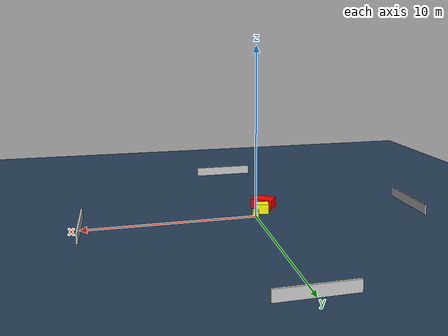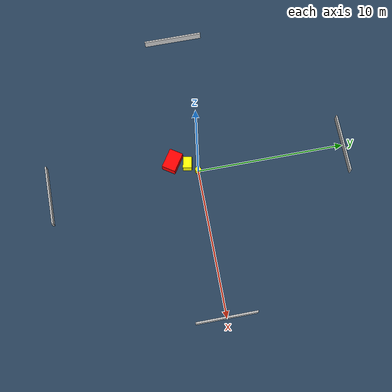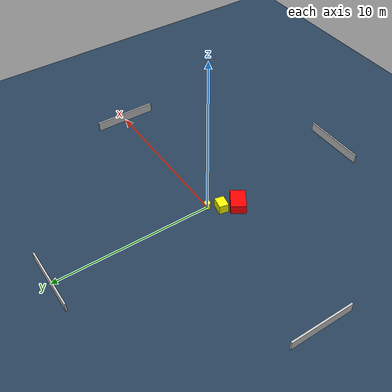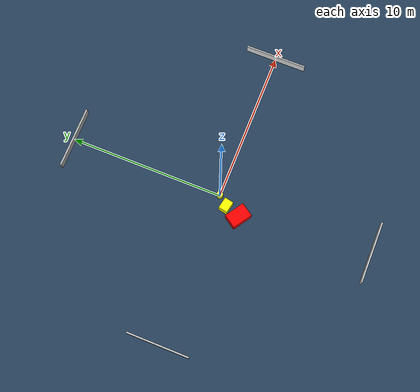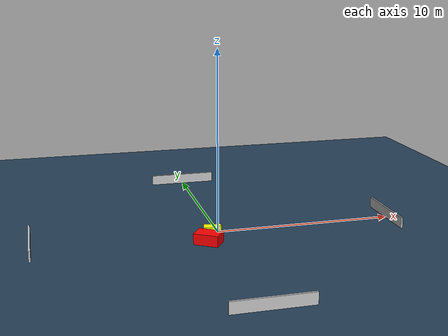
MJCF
<?xml version="1.0" ?>
<mujoco model="generated_environment">
  <option timestep="0.01" integrator="RK4" cone="elliptic"/>
  <default>
    <geom density="1"/>
  </default>
  <asset>
    <texture builtin="gradient" height="3072" name="skybox" rgb1="0.3 0.5 0.7" rgb2="0 0 0" type="skybox" width="512"/>
    <texture builtin="checker" height="300" name="groundplane" rgb1="0.2 0.3 0.4" rgb2="0.1 0.2 0.3" type="2d" width="300"/>
    <material name="groundplane" reflectance="0.2" texrepeat="5 5" texture="groundplane"/>
  </asset>
  <worldbody>
    <light dir="0 0 -1" directional="true" pos="0 0 1.5"/>
    <geom condim="3" friction="0.5 0.005 0.001" material="groundplane" name="floor" pos="0 0 0" size="0 0 0.05" type="plane"/>
    <body name="walls">
      <geom name="wall_1" condim="4" pos="-10.0 0.0 0.3" rgba="0.800000011920929 0.800000011920929 0.800000011920929 1.0" size="0.05 2.0 0.3" type="box"/>
      <geom name="wall_2" condim="4" pos="10.0 0.0 0.3" rgba="0.800000011920929 0.800000011920929 0.800000011920929 1.0" size="0.05 2.0 0.3" type="box"/>
      <geom name="wall_3" condim="4" pos="0.0 -10.0 0.3" rgba="0.800000011920929 0.800000011920929 0.800000011920929 1.0" size="2.0 0.05 0.3" type="box"/>
      <geom name="wall_4" condim="4" pos="0.0 10.0 0.3" rgba="0.800000011920929 0.800000011920929 0.800000011920929 1.0" size="2.0 0.05 0.3" type="box"/>
    </body>
    <body name="robot">
      <joint name="joint_x" type="slide" pos="0 0 0" axis="1 0 0"/>
      <joint name="joint_y" type="slide" pos="0 0 0" axis="0 1 0"/>
      <geom name="robot" type="cylinder" pos="0.0 0.0 0.2" size="0.2 0.2 0.0" mass="5.0" friction="1.0 0.005 0.0001" condim="4" rgba="1.0 1.0 0.0 1.0"/>
    </body>
    <body name="obstacle_1_movable">
      <geom name="obstacle_1_movable" condim="4" pos="-0.5544491295459266 -0.6246610166427212 0.3" euler="0 0 78.53872209593578" friction="0.0 0.005 0.001" rgba="1.0 1.0 0.0 1.0" size="0.29477545059128 0.3811014717868101 0.3" type="box" mass="0.1"/>
      <joint type="free"/>
    </body>
    <body name="obstacle_2_static">
      <geom name="obstacle_2_static" condim="4" pos="-0.8910005138178433 -1.583176171136623 0.3" euler="0 0 56.583143257324224" friction="0.0 0.005 0.001" rgba="1.0 0.0 0.0 1.0" size="0.4662702156348758 0.673735454683454 0.3" type="box"/>
    </body>
  </worldbody>
  <actuator>
    <motor name="actuator_x" joint="joint_x" gear="1" ctrlrange="-1 1"/>
    <motor name="actuator_y" joint="joint_y" gear="1" ctrlrange="-1 1"/>
  </actuator>
</mujoco>
